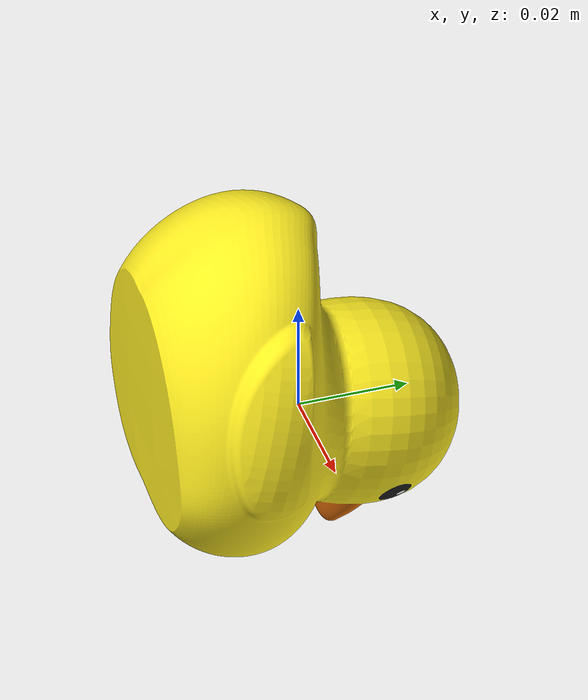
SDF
<?xml version="1.0"?>
<sdf version="1.5">
  <model name='duckie'>
    <static>false</static>
    <self_collide>false</self_collide>

    <link name='link'>

      <visual name='visual'>
        <geometry>
          <mesh>
            <uri>meshes/duckie.dae</uri>
            <scale>.5 .5 .5 </scale>
          </mesh>
        </geometry>
      </visual>

      <collision name='collision'>
        <geometry>
          <mesh>
            <uri>meshes/duckie_collision.obj</uri>
            <scale>.5 .5 .5 </scale>
          </mesh>
        </geometry>
      </collision>

      <pose>0.0 0.0 0.0 0.0 0.0 0.0</pose>

      <!--inertia
      as thin-walled cylinder w=10g, D=50mm, h=40mm-->
      <inertial>
        <mass>0.01</mass>
        <inertia>
          <ixx>3.0e-6</ixx>
          <iyy>3.0e-6</iyy>
          <izz>6.0e-6</izz>
          <ixy>0.0</ixy>
          <ixz>0.0</ixz>
          <iyz>0.0</iyz>
        </inertia>
      </inertial>

      <enable_wind>false</enable_wind>

    </link>

  </model>
</sdf>
